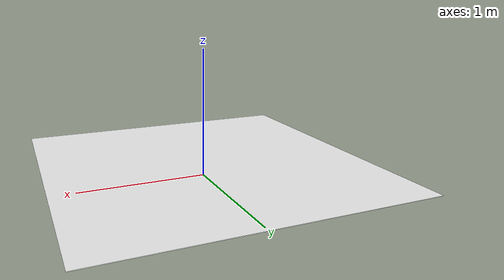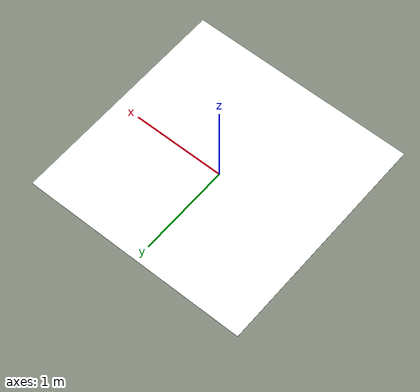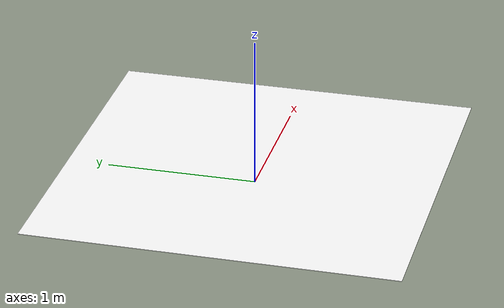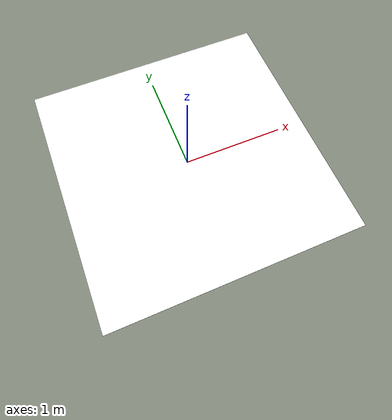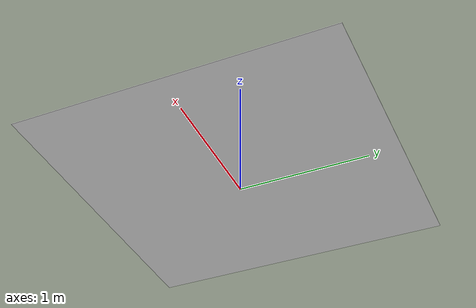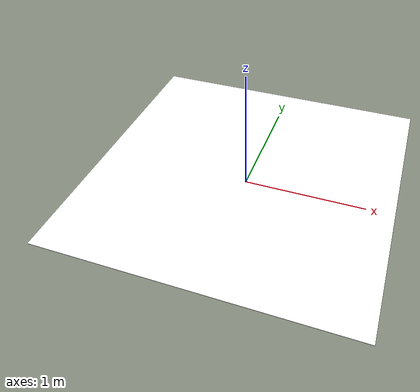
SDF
<?xml version="1.0" ?>
<sdf version="1.4">
  <model name="dlz_white">
    <static>true</static>
    <link name="dlz_white_link">
      <!-- Recenter the model frame on the landing zone so spawn position matches world position. -->
      <pose>-5.0192 0.0192 0 0 0 0</pose>
      <inertial>
        <mass>2</mass>
      </inertial>
      <visual name="visual">
        <pose> 3.8 1.2 .1 1.5708 0 0 </pose>
        <geometry>
          <mesh>
            <uri>model://dlz/meshes/dlz.STL</uri>
            <scale> .001 .001 .001 </scale>
          </mesh>
        </geometry>
        <material>
          <ambient>1 1 1 1</ambient>
          <diffuse>1 1 1 1</diffuse>
          <emissive>1 1 1 1</emissive>
          <specular>0.3 0.3 0.3 1</specular>
        </material>
      </visual>
    </link>
  </model>
</sdf>
